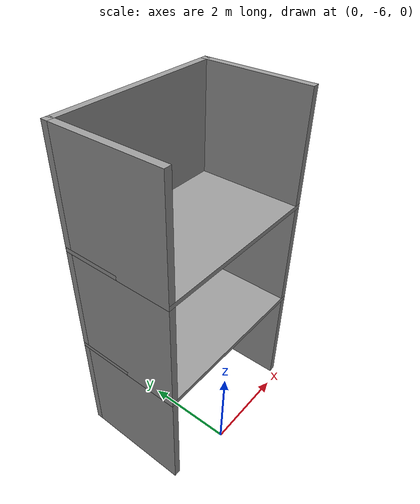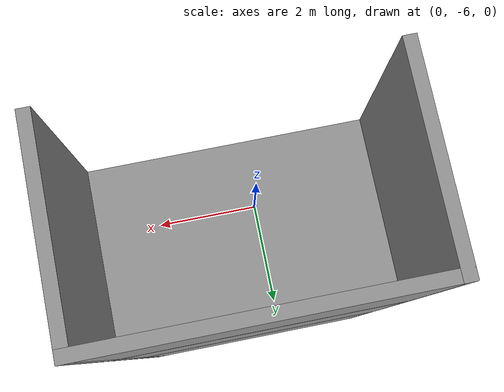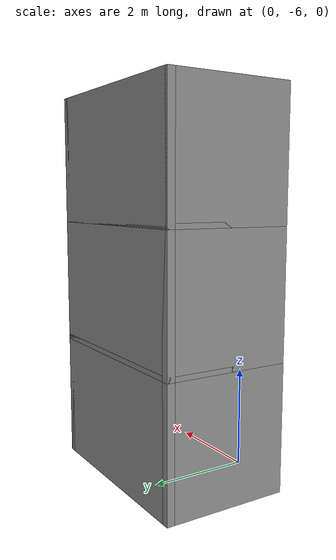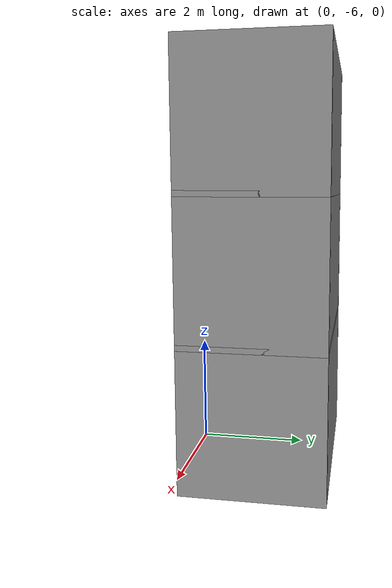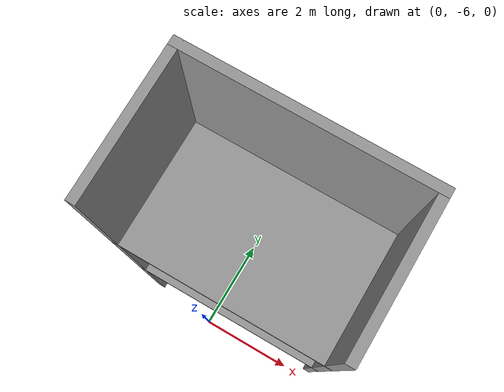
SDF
<?xml version='1.0'?>
<sdf version='1.7'>
  <model name='test_wall'>
    <pose>0.535 -2.9175 0 0 -0 0</pose>
    <link name='Floor_1'>
      <collision name='Floor_1_Collision'>
        <geometry>
          <box>
            <size>4 2.5 0.1</size>
          </box>
        </geometry>
        <pose>0 0 0.05 0 -0 0</pose>
      </collision>
      <visual name='Floor_1_Visual'>
        <pose>0 0 0.05 0 -0 0</pose>
        <geometry>
          <box>
            <size>4 2.5 0.1</size>
          </box>
        </geometry>
        <material>
          <script>
            <uri>file://media/materials/scripts/gazebo.material</uri>
            <name>Gazebo/Grey</name>
          </script>
          <ambient>1 1 1 1</ambient>
        </material>
        <meta>
          <layer>1</layer>
        </meta>
      </visual>
      <pose>0 -1.6675 2.5 0 -0 0</pose>
    </link>
    <link name='Floor_2'>
      <collision name='Floor_2_Collision'>
        <geometry>
          <box>
            <size>4 2.5 0.1</size>
          </box>
        </geometry>
        <pose>0 0 0.05 0 -0 0</pose>
      </collision>
      <visual name='Floor_2_Visual'>
        <pose>0 0 0.05 0 -0 0</pose>
        <geometry>
          <box>
            <size>4 2.5 0.1</size>
          </box>
        </geometry>
        <material>
          <script>
            <uri>file://media/materials/scripts/gazebo.material</uri>
            <name>Gazebo/Grey</name>
          </script>
          <ambient>1 1 1 1</ambient>
        </material>
        <meta>
          <layer>2</layer>
        </meta>
      </visual>
      <pose>0 -1.6675 5 0 -0 0</pose>
    </link>
    <link name='Wall_0'>
      <collision name='Wall_0_Collision'>
        <geometry>
          <box>
            <size>4 0.15 2.5</size>
          </box>
        </geometry>
        <pose>0 0 1.25 0 -0 0</pose>
      </collision>
      <visual name='Wall_0_Visual'>
        <pose>0 0 1.25 0 -0 0</pose>
        <geometry>
          <box>
            <size>4 0.15 2.5</size>
          </box>
        </geometry>
        <material>
          <script>
            <uri>file://media/materials/scripts/gazebo.material</uri>
            <name>Gazebo/Grey</name>
          </script>
          <ambient>1 1 1 1</ambient>
        </material>
        <meta>
          <layer>0</layer>
        </meta>
      </visual>
      <pose>0 -0.4925 0 0 -0 0</pose>
    </link>
    <link name='Wall_1'>
      <collision name='Wall_1_Collision'>
        <geometry>
          <box>
            <size>2.5 0.15 2.5</size>
          </box>
        </geometry>
        <pose>0 0 1.25 0 -0 0</pose>
      </collision>
      <visual name='Wall_1_Visual'>
        <pose>0 0 1.25 0 -0 0</pose>
        <geometry>
          <box>
            <size>2.5 0.15 2.5</size>
          </box>
        </geometry>
        <material>
          <script>
            <uri>file://media/materials/scripts/gazebo.material</uri>
            <name>Gazebo/Grey</name>
          </script>
          <ambient>1 1 1 1</ambient>
        </material>
        <meta>
          <layer>0</layer>
        </meta>
      </visual>
      <pose>1.925 -1.6675 0 0 -0 -1.5708</pose>
    </link>
    <link name='Wall_10'>
      <collision name='Wall_10_Collision'>
        <geometry>
          <box>
            <size>2.5 0.15 2.5</size>
          </box>
        </geometry>
        <pose>0 0 1.25 0 -0 0</pose>
      </collision>
      <visual name='Wall_10_Visual'>
        <pose>0 0 1.25 0 -0 0</pose>
        <geometry>
          <box>
            <size>2.5 0.15 2.5</size>
          </box>
        </geometry>
        <material>
          <script>
            <uri>file://media/materials/scripts/gazebo.material</uri>
            <name>Gazebo/Grey</name>
          </script>
          <ambient>1 1 1 1</ambient>
        </material>
        <meta>
          <layer>1</layer>
        </meta>
      </visual>
      <pose>-1.925 -1.6675 2.5 0 -0 -1.5708</pose>
    </link>
    <link name='Wall_11'>
      <collision name='Wall_11_Collision'>
        <geometry>
          <box>
            <size>4 0.15 2.5</size>
          </box>
        </geometry>
        <pose>0 0 1.25 0 -0 0</pose>
      </collision>
      <visual name='Wall_11_Visual'>
        <pose>0 0 1.25 0 -0 0</pose>
        <geometry>
          <box>
            <size>4 0.15 2.5</size>
          </box>
        </geometry>
        <material>
          <script>
            <uri>file://media/materials/scripts/gazebo.material</uri>
            <name>Gazebo/Grey</name>
          </script>
          <ambient>1 1 1 1</ambient>
        </material>
        <meta>
          <layer>2</layer>
        </meta>
      </visual>
      <pose>0 -0.4925 5 0 -0 0</pose>
    </link>
    <link name='Wall_12'>
      <collision name='Wall_12_Collision'>
        <geometry>
          <box>
            <size>2.5 0.15 2.5</size>
          </box>
        </geometry>
        <pose>0 0 1.25 0 -0 0</pose>
      </collision>
      <visual name='Wall_12_Visual'>
        <pose>0 0 1.25 0 -0 0</pose>
        <geometry>
          <box>
            <size>2.5 0.15 2.5</size>
          </box>
        </geometry>
        <material>
          <script>
            <uri>file://media/materials/scripts/gazebo.material</uri>
            <name>Gazebo/Grey</name>
          </script>
          <ambient>1 1 1 1</ambient>
        </material>
        <meta>
          <layer>2</layer>
        </meta>
      </visual>
      <pose>1.925 -1.6675 5 0 -0 -1.5708</pose>
    </link>
    <link name='Wall_13'>
      <collision name='Wall_13_Collision'>
        <geometry>
          <box>
            <size>2.5 0.15 2.5</size>
          </box>
        </geometry>
        <pose>0 0 1.25 0 -0 0</pose>
      </collision>
      <visual name='Wall_13_Visual'>
        <pose>0 0 1.25 0 -0 0</pose>
        <geometry>
          <box>
            <size>2.5 0.15 2.5</size>
          </box>
        </geometry>
        <material>
          <script>
            <uri>file://media/materials/scripts/gazebo.material</uri>
            <name>Gazebo/Grey</name>
          </script>
          <ambient>1 1 1 1</ambient>
        </material>
        <meta>
          <layer>2</layer>
        </meta>
      </visual>
      <pose>-1.925 -1.6675 5 0 -0 -1.5708</pose>
    </link>
    <link name='Wall_3'>
      <collision name='Wall_3_Collision'>
        <geometry>
          <box>
            <size>2.5 0.15 2.5</size>
          </box>
        </geometry>
        <pose>0 0 1.25 0 -0 0</pose>
      </collision>
      <visual name='Wall_3_Visual'>
        <pose>0 0 1.25 0 -0 0</pose>
        <geometry>
          <box>
            <size>2.5 0.15 2.5</size>
          </box>
        </geometry>
        <material>
          <script>
            <uri>file://media/materials/scripts/gazebo.material</uri>
            <name>Gazebo/Grey</name>
          </script>
          <ambient>1 1 1 1</ambient>
        </material>
        <meta>
          <layer>0</layer>
        </meta>
      </visual>
      <pose>-1.925 -1.6675 0 0 -0 -1.5708</pose>
    </link>
    <link name='Wall_8'>
      <collision name='Wall_8_Collision'>
        <geometry>
          <box>
            <size>4 0.15 2.5</size>
          </box>
        </geometry>
        <pose>0 0 1.25 0 -0 0</pose>
      </collision>
      <visual name='Wall_8_Visual'>
        <pose>0 0 1.25 0 -0 0</pose>
        <geometry>
          <box>
            <size>4 0.15 2.5</size>
          </box>
        </geometry>
        <material>
          <script>
            <uri>file://media/materials/scripts/gazebo.material</uri>
            <name>Gazebo/Grey</name>
          </script>
          <ambient>1 1 1 1</ambient>
        </material>
        <meta>
          <layer>1</layer>
        </meta>
      </visual>
      <pose>0 -0.4925 2.5 0 -0 0</pose>
    </link>
    <link name='Wall_9'>
      <collision name='Wall_9_Collision'>
        <geometry>
          <box>
            <size>2.5 0.15 2.5</size>
          </box>
        </geometry>
        <pose>0 0 1.25 0 -0 0</pose>
      </collision>
      <visual name='Wall_9_Visual'>
        <pose>0 0 1.25 0 -0 0</pose>
        <geometry>
          <box>
            <size>2.5 0.15 2.5</size>
          </box>
        </geometry>
        <material>
          <script>
            <uri>file://media/materials/scripts/gazebo.material</uri>
            <name>Gazebo/Grey</name>
          </script>
          <ambient>1 1 1 1</ambient>
        </material>
        <meta>
          <layer>1</layer>
        </meta>
      </visual>
      <pose>1.925 -1.6675 2.5 0 -0 -1.5708</pose>
    </link>
    <static>1</static>
  </model>
</sdf>
